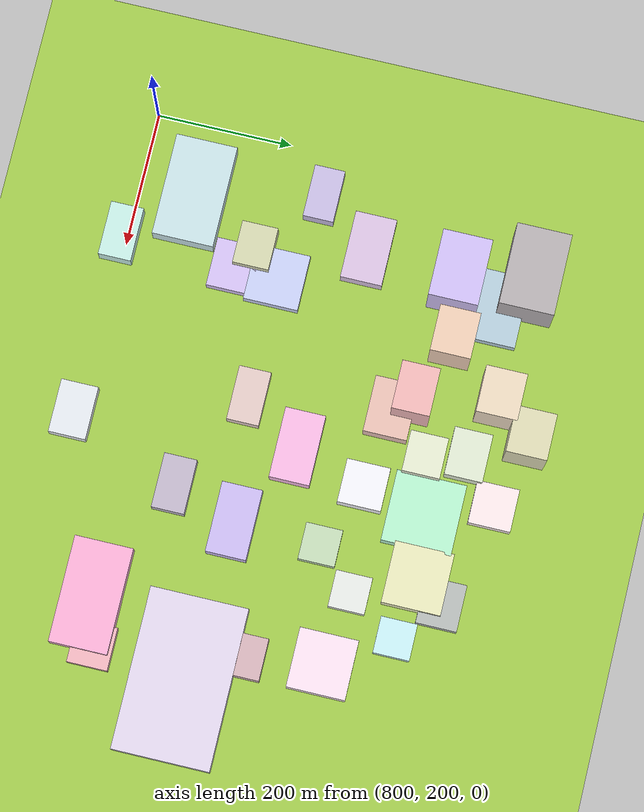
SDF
<sdf version="1.9">
 <world name="city_map">
  <model name="ground_plane">
   <static>1</static>
   <link name="link">
    <collision name="collision">
     <geometry><plane><normal>0 0 1</normal><size>11000 11000</size></plane></geometry>
    </collision>
    <visual name="visual">
     <geometry><plane><normal>0 0 1</normal><size>11000 11000</size></plane></geometry>
     <material>
      <ambient>0.551 0.712 0.210 1</ambient>
      <diffuse>0.651 0.812 0.310 1</diffuse>
      <specular>0.1 0.1 0.05 1</specular>
     </material>
    </visual>
   </link>
  </model>
  <model name="building_465908569">
   <static>1</static>
   <pose>1599.6223753434201 429.1569429327161 16.5 0 0 0</pose>
   <link name="link">
    <collision name="collision">
     <geometry><box><size>237.01606593275582 143.50079999939425 33.0</size></box></geometry>
    </collision>
    <visual name="visual">
     <cast_shadows>false</cast_shadows>
     <geometry><box><size>237.01606593275582 143.50079999939425 33.0</size></box></geometry>
     <material>
      <ambient>0.800 0.760 0.848 1</ambient>
      <diffuse>0.900 0.860 0.948 1</diffuse>
      <specular>0.270 0.258 0.284 1</specular>
      <emissive>0.01 0.01 0.01 1</emissive>
     </material>
    </visual>
   </link>
  </model>
  <model name="building_389608663">
   <static>1</static>
   <pose>905.3183824061638 281.0071367247955 16.5 0 0 0</pose>
   <link name="link">
    <collision name="collision">
     <geometry><box><size>152.20320000013743 90.9731983320926 33.0</size></box></geometry>
    </collision>
    <visual name="visual">
     <cast_shadows>false</cast_shadows>
     <geometry><box><size>152.20320000013743 90.9731983320926 33.0</size></box></geometry>
     <material>
      <ambient>0.700 0.803 0.822 1</ambient>
      <diffuse>0.800 0.903 0.922 1</diffuse>
      <specular>0.240 0.271 0.276 1</specular>
      <emissive>0.01 0.01 0.01 1</emissive>
     </material>
    </visual>
   </link>
  </model>
  <model name="building_533130295">
   <static>1</static>
   <pose>1513.0665669534376 277.54224428573156 15.0 0 0 0</pose>
   <link name="link">
    <collision name="collision">
     <geometry><box><size>155.93849749198696 86.06940000021979 30.0</size></box></geometry>
    </collision>
    <visual name="visual">
     <cast_shadows>false</cast_shadows>
     <geometry><box><size>155.93849749198696 86.06940000021979 30.0</size></box></geometry>
     <material>
      <ambient>0.894 0.607 0.756 1</ambient>
      <diffuse>0.994 0.707 0.856 1</diffuse>
      <specular>0.298 0.212 0.257 1</specular>
      <emissive>0.01 0.01 0.01 1</emissive>
     </material>
    </visual>
   </link>
  </model>
  <model name="building_471836619">
   <static>1</static>
   <pose>1289.0909210662867 711.55105257391 15.0 0 0 0</pose>
   <link name="link">
    <collision name="collision">
     <geometry><box><size>104.06681795322613 102.4974000005443 30.0</size></box></geometry>
    </collision>
    <visual name="visual">
     <cast_shadows>false</cast_shadows>
     <geometry><box><size>104.06681795322613 102.4974000005443 30.0</size></box></geometry>
     <material>
      <ambient>0.628 0.871 0.727 1</ambient>
      <diffuse>0.728 0.971 0.827 1</diffuse>
      <specular>0.218 0.291 0.248 1</specular>
      <emissive>0.01 0.01 0.01 1</emissive>
     </material>
    </visual>
   </link>
  </model>
  <model name="building_159186746">
   <static>1</static>
   <pose>918.5211170483635 787.5180528727329 45.0 0 0 0</pose>
   <link name="link">
    <collision name="collision">
     <geometry><box><size>120.40169999998085 80.41584057315826 90.0</size></box></geometry>
    </collision>
    <visual name="visual">
     <cast_shadows>false</cast_shadows>
     <geometry><box><size>120.40169999998085 80.41584057315826 90.0</size></box></geometry>
     <material>
      <ambient>0.626 0.605 0.615 1</ambient>
      <diffuse>0.726 0.705 0.715 1</diffuse>
      <specular>0.218 0.211 0.214 1</specular>
      <emissive>0.01 0.01 0.01 1</emissive>
     </material>
    </visual>
   </link>
  </model>
  <model name="building_853514424">
   <static>1</static>
   <pose>1382.6404797237888 724.1719283195595 15.0 0 0 0</pose>
   <link name="link">
    <collision name="collision">
     <geometry><box><size>90.47252361474828 86.46900000015734 30.0</size></box></geometry>
    </collision>
    <visual name="visual">
     <cast_shadows>false</cast_shadows>
     <geometry><box><size>90.47252361474828 86.46900000015734 30.0</size></box></geometry>
     <material>
      <ambient>0.831 0.831 0.656 1</ambient>
      <diffuse>0.931 0.931 0.756 1</diffuse>
      <specular>0.279 0.279 0.227 1</specular>
      <emissive>0.01 0.01 0.01 1</emissive>
     </material>
    </visual>
   </link>
  </model>
  <model name="building_289481733">
   <static>1</static>
   <pose>970.8380670472859 749.8210200504577 10.0 0 0 0</pose>
   <link name="link">
    <collision name="collision">
     <geometry><box><size>105.59225450909507 71.13990000005543 20</size></box></geometry>
    </collision>
    <visual name="visual">
     <cast_shadows>false</cast_shadows>
     <geometry><box><size>105.59225450909507 71.13990000005543 20</size></box></geometry>
     <material>
      <ambient>0.621 0.720 0.773 1</ambient>
      <diffuse>0.721 0.820 0.873 1</diffuse>
      <specular>0.216 0.246 0.262 1</specular>
      <emissive>0.01 0.01 0.01 1</emissive>
     </material>
    </visual>
   </link>
  </model>
  <model name="building_327571461">
   <static>1</static>
   <pose>1532.3211867541359 620.2618297985534 15.0 0 0 0</pose>
   <link name="link">
    <collision name="collision">
     <geometry><box><size>87.23490000043199 85.98325630215425 30.0</size></box></geometry>
    </collision>
    <visual name="visual">
     <cast_shadows>false</cast_shadows>
     <geometry><box><size>87.23490000043199 85.98325630215425 30.0</size></box></geometry>
     <material>
      <ambient>0.899 0.806 0.868 1</ambient>
      <diffuse>0.999 0.906 0.968 1</diffuse>
      <specular>0.300 0.272 0.290 1</specular>
      <emissive>0.01 0.01 0.01 1</emissive>
     </material>
    </visual>
   </link>
  </model>
  <model name="building_141587478">
   <static>1</static>
   <pose>940.7012736593832 682.6823640824131 45.0 0 0 0</pose>
   <link name="link">
    <collision name="collision">
     <geometry><box><size>98.09757943300758 72.80490000058393 90.0</size></box></geometry>
    </collision>
    <visual name="visual">
     <cast_shadows>false</cast_shadows>
     <geometry><box><size>98.09757943300758 72.80490000058393 90.0</size></box></geometry>
     <material>
      <ambient>0.730 0.665 0.878 1</ambient>
      <diffuse>0.830 0.765 0.978 1</diffuse>
      <specular>0.249 0.229 0.294 1</specular>
      <emissive>0.01 0.01 0.01 1</emissive>
     </material>
    </visual>
   </link>
  </model>
  <model name="building_18661467">
   <static>1</static>
   <pose>1000.8993191655425 426.4448986734249 10.0 0 0 0</pose>
   <link name="link">
    <collision name="collision">
     <geometry><box><size>82.70609999956235 80.84029703271887 20</size></box></geometry>
    </collision>
    <visual name="visual">
     <cast_shadows>false</cast_shadows>
     <geometry><box><size>82.70609999956235 80.84029703271887 20</size></box></geometry>
     <material>
      <ambient>0.699 0.731 0.878 1</ambient>
      <diffuse>0.799 0.831 0.978 1</diffuse>
      <specular>0.240 0.249 0.293 1</specular>
      <emissive>0.01 0.01 0.01 1</emissive>
     </material>
    </visual>
   </link>
  </model>
  <model name="building_110399558">
   <static>1</static>
   <pose>1237.2429264377479 513.4218685192117 15.0 0 0 0</pose>
   <link name="link">
    <collision name="collision">
     <geometry><box><size>104.07781470329732 59.48490000029949 30.0</size></box></geometry>
    </collision>
    <visual name="visual">
     <cast_shadows>false</cast_shadows>
     <geometry><box><size>104.07781470329732 59.48490000029949 30.0</size></box></geometry>
     <material>
      <ambient>0.885 0.648 0.810 1</ambient>
      <diffuse>0.985 0.748 0.910 1</diffuse>
      <specular>0.295 0.224 0.273 1</specular>
      <emissive>0.01 0.01 0.01 1</emissive>
     </material>
    </visual>
   </link>
  </model>
  <model name="building_367219591">
   <static>1</static>
   <pose>929.9091040274527 546.5962677837097 13.5 0 0 0</pose>
   <link name="link">
    <collision name="collision">
     <geometry><box><size>100.43280000007826 61.510335635842566 27.0</size></box></geometry>
    </collision>
    <visual name="visual">
     <cast_shadows>false</cast_shadows>
     <geometry><box><size>100.43280000007826 61.510335635842566 27.0</size></box></geometry>
     <material>
      <ambient>0.768 0.680 0.802 1</ambient>
      <diffuse>0.868 0.780 0.902 1</diffuse>
      <specular>0.260 0.234 0.271 1</specular>
      <emissive>0.01 0.01 0.01 1</emissive>
     </material>
    </visual>
   </link>
  </model>
  <model name="building_251285672">
   <static>1</static>
   <pose>1362.875909977921 450.33092796531946 15.0 0 0 0</pose>
   <link name="link">
    <collision name="collision">
     <geometry><box><size>103.73471097792735 59.540400000159366 30.0</size></box></geometry>
    </collision>
    <visual name="visual">
     <cast_shadows>false</cast_shadows>
     <geometry><box><size>103.73471097792735 59.540400000159366 30.0</size></box></geometry>
     <material>
      <ambient>0.710 0.649 0.863 1</ambient>
      <diffuse>0.810 0.749 0.963 1</diffuse>
      <specular>0.243 0.225 0.289 1</specular>
      <emissive>0.01 0.01 0.01 1</emissive>
     </material>
    </visual>
   </link>
  </model>
  <model name="building_664958497">
   <static>1</static>
   <pose>1152.3539751468375 631.7444447377364 16.5 0 0 0</pose>
   <link name="link">
    <collision name="collision">
     <geometry><box><size>83.05020000042873 64.35898051881993 33.0</size></box></geometry>
    </collision>
    <visual name="visual">
     <cast_shadows>false</cast_shadows>
     <geometry><box><size>83.05020000042873 64.35898051881993 33.0</size></box></geometry>
     <material>
      <ambient>0.827 0.667 0.625 1</ambient>
      <diffuse>0.927 0.767 0.725 1</diffuse>
      <specular>0.278 0.230 0.218 1</specular>
      <emissive>0.01 0.01 0.01 1</emissive>
     </material>
    </visual>
   </link>
  </model>
  <model name="building_598287124">
   <static>1</static>
   <pose>999.069374259314 361.72503886822864 10.0 0 0 0</pose>
   <link name="link">
    <collision name="collision">
     <geometry><box><size>72.46080000050625 65.69309640517135 20</size></box></geometry>
    </collision>
    <visual name="visual">
     <cast_shadows>false</cast_shadows>
     <geometry><box><size>72.46080000050625 65.69309640517135 20</size></box></geometry>
     <material>
      <ambient>0.745 0.672 0.872 1</ambient>
      <diffuse>0.845 0.772 0.972 1</diffuse>
      <specular>0.254 0.232 0.292 1</specular>
      <emissive>0.01 0.01 0.01 1</emissive>
     </material>
    </visual>
   </link>
  </model>
  <model name="building_986454985">
   <static>1</static>
   <pose>1258.192214590255 187.10611456587657 12.0 0 0 0</pose>
   <link name="link">
    <collision name="collision">
     <geometry><box><size>78.73048727675311 54.978299999689284 24.0</size></box></geometry>
    </collision>
    <visual name="visual">
     <cast_shadows>false</cast_shadows>
     <geometry><box><size>78.73048727675311 54.978299999689284 24.0</size></box></geometry>
     <material>
      <ambient>0.811 0.829 0.851 1</ambient>
      <diffuse>0.911 0.929 0.951 1</diffuse>
      <specular>0.273 0.279 0.285 1</specular>
      <emissive>0.01 0.01 0.01 1</emissive>
     </material>
    </visual>
   </link>
  </model>
  <model name="building_106012826">
   <static>1</static>
   <pose>1104.8380740546888 780.1466940856667 45.0 0 0 0</pose>
   <link name="link">
    <collision name="collision">
     <geometry><box><size>68.53140000033164 60.1499101915089 90.0</size></box></geometry>
    </collision>
    <visual name="visual">
     <cast_shadows>false</cast_shadows>
     <geometry><box><size>68.53140000033164 60.1499101915089 90.0</size></box></geometry>
     <material>
      <ambient>0.845 0.769 0.670 1</ambient>
      <diffuse>0.945 0.869 0.770 1</diffuse>
      <specular>0.283 0.261 0.231 1</specular>
      <emissive>0.01 0.01 0.01 1</emissive>
     </material>
    </visual>
   </link>
  </model>
  <model name="building_416774522">
   <static>1</static>
   <pose>1269.7888822596537 619.0285106258276 15.0 0 0 0</pose>
   <link name="link">
    <collision name="collision">
     <geometry><box><size>64.23569999981993 64.00795600147721 30.0</size></box></geometry>
    </collision>
    <visual name="visual">
     <cast_shadows>false</cast_shadows>
     <geometry><box><size>64.23569999981993 64.00795600147721 30.0</size></box></geometry>
     <material>
      <ambient>0.870 0.869 0.893 1</ambient>
      <diffuse>0.970 0.969 0.993 1</diffuse>
      <specular>0.291 0.291 0.298 1</specular>
      <emissive>0.01 0.01 0.01 1</emissive>
     </material>
    </visual>
   </link>
  </model>
  <model name="building_17085484">
   <static>1</static>
   <pose>1409.8689700407335 765.1190323837678 10.5 0 0 0</pose>
   <link name="link">
    <collision name="collision">
     <geometry><box><size>68.53749505511684 59.95109999943793 21.0</size></box></geometry>
    </collision>
    <visual name="visual">
     <cast_shadows>false</cast_shadows>
     <geometry><box><size>68.53749505511684 59.95109999943793 21.0</size></box></geometry>
     <material>
      <ambient>0.628 0.648 0.639 1</ambient>
      <diffuse>0.728 0.748 0.739 1</diffuse>
      <specular>0.218 0.224 0.222 1</specular>
      <emissive>0.01 0.01 0.01 1</emissive>
     </material>
    </visual>
   </link>
  </model>
  <model name="building_893225475">
   <static>1</static>
   <pose>1151.3647373686817 833.7037305045369 45.0 0 0 0</pose>
   <link name="link">
    <collision name="collision">
     <geometry><box><size>67.95419999989605 59.68995970978758 90.0</size></box></geometry>
    </collision>
    <visual name="visual">
     <cast_shadows>false</cast_shadows>
     <geometry><box><size>67.95419999989605 59.68995970978758 90.0</size></box></geometry>
     <material>
      <ambient>0.782 0.769 0.624 1</ambient>
      <diffuse>0.882 0.869 0.724 1</diffuse>
      <specular>0.265 0.261 0.217 1</specular>
      <emissive>0.01 0.01 0.01 1</emissive>
     </material>
    </visual>
   </link>
  </model>
  <model name="building_221754435">
   <static>1</static>
   <pose>1033.8681902774424 696.4452217893031 45.0 0 0 0</pose>
   <link name="link">
    <collision name="collision">
     <geometry><box><size>67.9875000002852 59.354043124436345 90.0</size></box></geometry>
    </collision>
    <visual name="visual">
     <cast_shadows>false</cast_shadows>
     <geometry><box><size>67.9875000002852 59.354043124436345 90.0</size></box></geometry>
     <material>
      <ambient>0.854 0.722 0.628 1</ambient>
      <diffuse>0.954 0.822 0.728 1</diffuse>
      <specular>0.286 0.247 0.218 1</specular>
      <emissive>0.01 0.01 0.01 1</emissive>
     </material>
    </visual>
   </link>
  </model>
  <model name="building_82357720">
   <static>1</static>
   <pose>1192.305885574715 755.0558059884796 15.0 0 0 0</pose>
   <link name="link">
    <collision name="collision">
     <geometry><box><size>70.98449999981682 56.03081495539014 30.0</size></box></geometry>
    </collision>
    <visual name="visual">
     <cast_shadows>false</cast_shadows>
     <geometry><box><size>70.98449999981682 56.03081495539014 30.0</size></box></geometry>
     <material>
      <ambient>0.794 0.831 0.741 1</ambient>
      <diffuse>0.894 0.931 0.841 1</diffuse>
      <specular>0.268 0.279 0.252 1</specular>
      <emissive>0.01 0.01 0.01 1</emissive>
     </material>
    </visual>
   </link>
  </model>
  <model name="building_556488955">
   <static>1</static>
   <pose>1126.603176378987 660.2515247379825 45.0 0 0 0</pose>
   <link name="link">
    <collision name="collision">
     <geometry><box><size>70.90679999969751 55.70762318779416 90.0</size></box></geometry>
    </collision>
    <visual name="visual">
     <cast_shadows>false</cast_shadows>
     <geometry><box><size>70.90679999969751 55.70762318779416 90.0</size></box></geometry>
     <material>
      <ambient>0.862 0.636 0.638 1</ambient>
      <diffuse>0.962 0.736 0.738 1</diffuse>
      <specular>0.289 0.221 0.221 1</specular>
      <emissive>0.01 0.01 0.01 1</emissive>
     </material>
    </visual>
   </link>
  </model>
  <model name="building_856987616">
   <static>1</static>
   <pose>1255.5002978733448 806.7906752586728 10.5 0 0 0</pose>
   <link name="link">
    <collision name="collision">
     <geometry><box><size>62.881499999768664 62.21608076383086 21.0</size></box></geometry>
    </collision>
    <visual name="visual">
     <cast_shadows>false</cast_shadows>
     <geometry><box><size>62.881499999768664 62.21608076383086 21.0</size></box></geometry>
     <material>
      <ambient>0.896 0.829 0.838 1</ambient>
      <diffuse>0.996 0.929 0.938 1</diffuse>
      <specular>0.299 0.279 0.281 1</specular>
      <emissive>0.01 0.01 0.01 1</emissive>
     </material>
    </visual>
   </link>
  </model>
  <model name="building_884978804">
   <static>1</static>
   <pose>1329.5136699918935 354.07482791417175 12.0 0 0 0</pose>
   <link name="link">
    <collision name="collision">
     <geometry><box><size>80.67965418779671 48.35160000033056 24.0</size></box></geometry>
    </collision>
    <visual name="visual">
     <cast_shadows>false</cast_shadows>
     <geometry><box><size>80.67965418779671 48.35160000033056 24.0</size></box></geometry>
     <material>
      <ambient>0.675 0.631 0.712 1</ambient>
      <diffuse>0.775 0.731 0.812 1</diffuse>
      <specular>0.233 0.219 0.244 1</specular>
      <emissive>0.01 0.01 0.01 1</emissive>
     </material>
    </visual>
   </link>
  </model>
  <model name="building_752655693">
   <static>1</static>
   <pose>988.5837759837186 190.88758927067425 15.0 0 0 0</pose>
   <link name="link">
    <collision name="collision">
     <geometry><box><size>80.31078382481734 48.56249999964035 30.0</size></box></geometry>
    </collision>
    <visual name="visual">
     <cast_shadows>false</cast_shadows>
     <geometry><box><size>80.31078382481734 48.56249999964035 30.0</size></box></geometry>
     <material>
      <ambient>0.693 0.848 0.817 1</ambient>
      <diffuse>0.793 0.948 0.917 1</diffuse>
      <specular>0.238 0.284 0.275 1</specular>
      <emissive>0.01 0.01 0.01 1</emissive>
     </material>
    </visual>
   </link>
  </model>
  <model name="building_91103764">
   <static>1</static>
   <pose>1180.6626406022667 428.21924397951045 12.0 0 0 0</pose>
   <link name="link">
    <collision name="collision">
     <geometry><box><size>80.11111670358855 47.352599999697986 24.0</size></box></geometry>
    </collision>
    <visual name="visual">
     <cast_shadows>false</cast_shadows>
     <geometry><box><size>80.11111670358855 47.352599999697986 24.0</size></box></geometry>
     <material>
      <ambient>0.808 0.711 0.693 1</ambient>
      <diffuse>0.908 0.811 0.793 1</diffuse>
      <specular>0.272 0.243 0.238 1</specular>
      <emissive>0.01 0.01 0.01 1</emissive>
     </material>
    </visual>
   </link>
  </model>
  <model name="building_36895408">
   <static>1</static>
   <pose>1546.7866285335938 507.73192004864944 15.670678694468755 0 0 0</pose>
   <link name="link">
    <collision name="collision">
     <geometry><box><size>61.58493844705171 61.37190000026749 31.34135738893751</size></box></geometry>
    </collision>
    <visual name="visual">
     <cast_shadows>false</cast_shadows>
     <geometry><box><size>61.58493844705171 61.37190000026749 31.34135738893751</size></box></geometry>
     <material>
      <ambient>0.752 0.619 0.646 1</ambient>
      <diffuse>0.852 0.719 0.746 1</diffuse>
      <specular>0.256 0.216 0.224 1</specular>
      <emissive>0.01 0.01 0.01 1</emissive>
     </material>
    </visual>
   </link>
  </model>
  <model name="building_224252911">
   <static>1</static>
   <pose>1580.9827665316661 295.5516672234384 10.0 0 0 0</pose>
   <link name="link">
    <collision name="collision">
     <geometry><box><size>62.918105775738724 59.69579999960928 20</size></box></geometry>
    </collision>
    <visual name="visual">
     <cast_shadows>false</cast_shadows>
     <geometry><box><size>62.918105775738724 59.69579999960928 20</size></box></geometry>
     <material>
      <ambient>0.861 0.628 0.666 1</ambient>
      <diffuse>0.961 0.728 0.766 1</diffuse>
      <specular>0.288 0.218 0.230 1</specular>
      <emissive>0.01 0.01 0.01 1</emissive>
     </material>
    </visual>
   </link>
  </model>
  <model name="building_380136505">
   <static>1</static>
   <pose>865.1633516494991 464.76567089355274 13.5 0 0 0</pose>
   <link name="link">
    <collision name="collision">
     <geometry><box><size>78.01694722731003 45.19919999977162 27.0</size></box></geometry>
    </collision>
    <visual name="visual">
     <cast_shadows>false</cast_shadows>
     <geometry><box><size>78.01694722731003 45.19919999977162 27.0</size></box></geometry>
     <material>
      <ambient>0.696 0.654 0.808 1</ambient>
      <diffuse>0.796 0.754 0.908 1</diffuse>
      <specular>0.239 0.226 0.273 1</specular>
      <emissive>0.01 0.01 0.01 1</emissive>
     </material>
    </visual>
   </link>
  </model>
  <model name="building_407474557">
   <static>1</static>
   <pose>965.3354047505848 386.12716264474875 18.0 0 0 0</pose>
   <link name="link">
    <collision name="collision">
     <geometry><box><size>63.258900000235485 53.421390727565715 36.0</size></box></geometry>
    </collision>
    <visual name="visual">
     <cast_shadows>false</cast_shadows>
     <geometry><box><size>63.258900000235485 53.421390727565715 36.0</size></box></geometry>
     <material>
      <ambient>0.746 0.754 0.607 1</ambient>
      <diffuse>0.846 0.854 0.707 1</diffuse>
      <specular>0.254 0.256 0.212 1</specular>
      <emissive>0.01 0.01 0.01 1</emissive>
     </material>
    </visual>
   </link>
  </model>
  <model name="building_291148325">
   <static>1</static>
   <pose>1209.6642538277501 694.4194651413522 24.813043089193897 0 0 0</pose>
   <link name="link">
    <collision name="collision">
     <geometry><box><size>59.94826942716559 55.43339999948671 49.626086178387794</size></box></geometry>
    </collision>
    <visual name="visual">
     <cast_shadows>false</cast_shadows>
     <geometry><box><size>59.94826942716559 55.43339999948671 49.626086178387794</size></box></geometry>
     <material>
      <ambient>0.816 0.839 0.737 1</ambient>
      <diffuse>0.916 0.939 0.837 1</diffuse>
      <specular>0.275 0.282 0.251 1</specular>
      <emissive>0.01 0.01 0.01 1</emissive>
     </material>
    </visual>
   </link>
  </model>
  <model name="building_896330730">
   <static>1</static>
   <pose>1366.4995746191898 578.0486794105329 10.0 0 0 0</pose>
   <link name="link">
    <collision name="collision">
     <geometry><box><size>54.11490932024333 53.81279999947708 20</size></box></geometry>
    </collision>
    <visual name="visual">
     <cast_shadows>false</cast_shadows>
     <geometry><box><size>54.11490932024333 53.81279999947708 20</size></box></geometry>
     <material>
      <ambient>0.685 0.781 0.640 1</ambient>
      <diffuse>0.785 0.881 0.740 1</diffuse>
      <specular>0.235 0.264 0.222 1</specular>
      <emissive>0.01 0.01 0.01 1</emissive>
     </material>
    </visual>
   </link>
  </model>
  <model name="building_950120448">
   <static>1</static>
   <pose>1423.2046148888223 635.1483861930883 10.0 0 0 0</pose>
   <link name="link">
    <collision name="collision">
     <geometry><box><size>53.75636182171439 53.5353000001777 20</size></box></geometry>
    </collision>
    <visual name="visual">
     <cast_shadows>false</cast_shadows>
     <geometry><box><size>53.75636182171439 53.5353000001777 20</size></box></geometry>
     <material>
      <ambient>0.821 0.836 0.819 1</ambient>
      <diffuse>0.921 0.936 0.919 1</diffuse>
      <specular>0.276 0.281 0.276 1</specular>
      <emissive>0.01 0.01 0.01 1</emissive>
     </material>
    </visual>
   </link>
  </model>
  <model name="building_31464729">
   <static>1</static>
   <pose>1472.8154638430012 712.3684442999019 10.0 0 0 0</pose>
   <link name="link">
    <collision name="collision">
     <geometry><box><size>53.613000000297006 53.49203486053424 20</size></box></geometry>
    </collision>
    <visual name="visual">
     <cast_shadows>false</cast_shadows>
     <geometry><box><size>53.613000000297006 53.49203486053424 20</size></box></geometry>
     <material>
      <ambient>0.702 0.858 0.878 1</ambient>
      <diffuse>0.802 0.958 0.978 1</diffuse>
      <specular>0.241 0.287 0.293 1</specular>
      <emissive>0.01 0.01 0.01 1</emissive>
     </material>
    </visual>
   </link>
  </model>
 </world>
</sdf>
